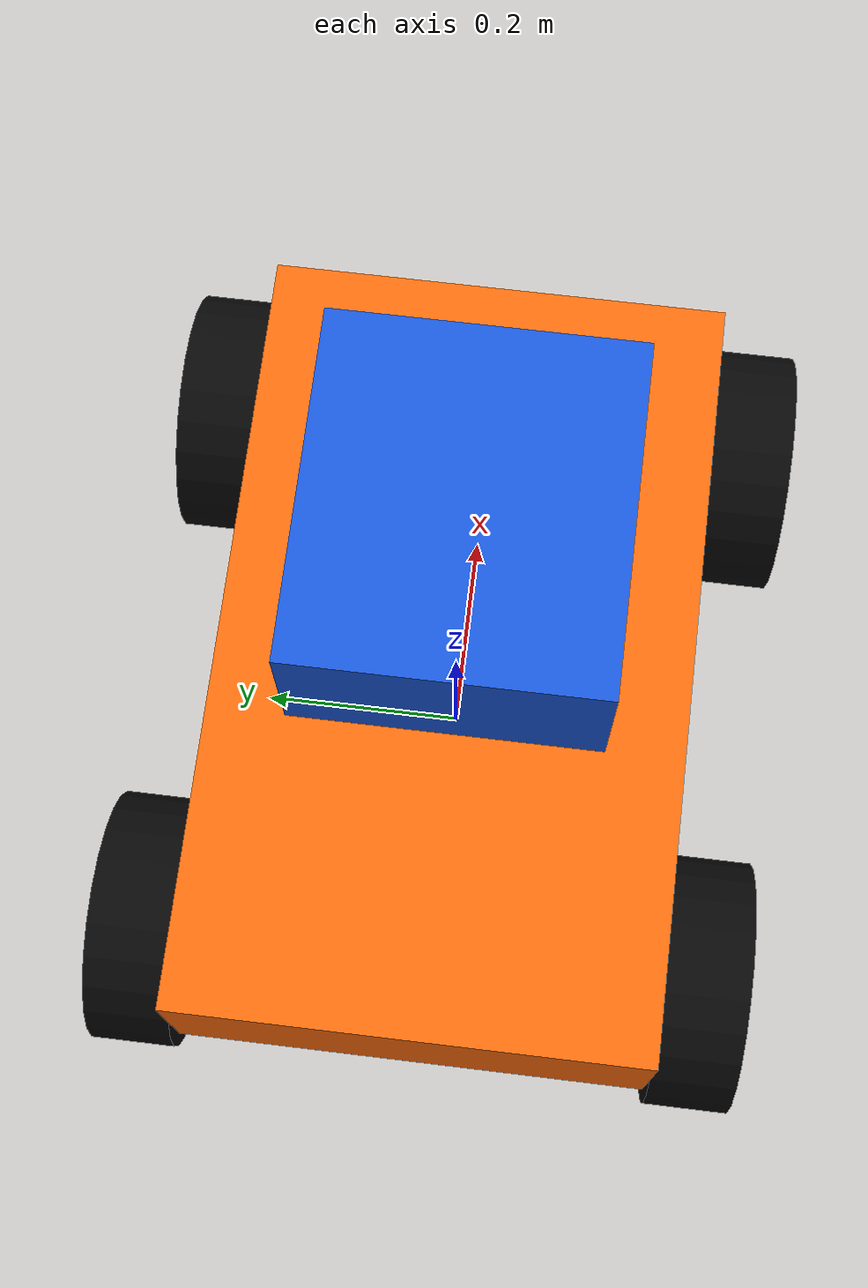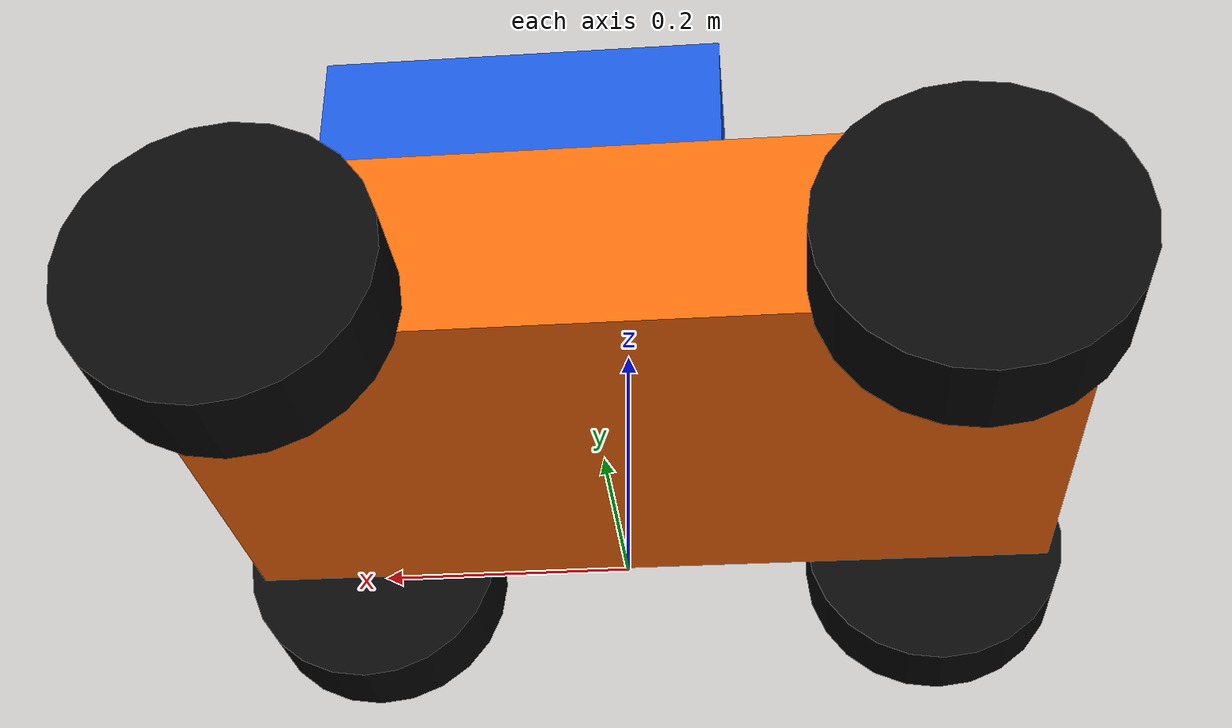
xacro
<?xml version="1.0"?>
<robot name="mountain_car" xmlns:xacro="http://www.ros.org/wiki/xacro">
  <!--
    四轮山地小车模型：
    - base_footprint 作为地面投影坐标系；
    - base_link 作为车体主 link；
    - Gazebo 平面运动插件订阅 /cmd_vel，便于 WASD 和自动巡航控制。
  -->

  <xacro:property name="chassis_length" value="0.75" />
  <xacro:property name="chassis_width" value="0.45" />
  <xacro:property name="chassis_height" value="0.16" />
  <xacro:property name="chassis_z" value="0.18" />
  <xacro:property name="wheel_radius" value="0.12" />
  <xacro:property name="wheel_width" value="0.08" />
  <xacro:property name="wheel_x" value="0.27" />
  <xacro:property name="wheel_y" value="0.265" />
  <xacro:property name="wheel_z" value="0.12" />

  <!-- ========== 材质定义：颜色在 RViz 和 Gazebo 中都易于识别 ========== -->
  <material name="orange_body">
    <color rgba="1.0 0.42 0.05 1.0" />
  </material>
  <material name="dark_wheel">
    <color rgba="0.03 0.03 0.03 1.0" />
  </material>
  <material name="silver">
    <color rgba="0.75 0.75 0.72 1.0" />
  </material>
  <material name="blue_window">
    <color rgba="0.10 0.34 0.85 1.0" />
  </material>

  <!-- KDL 不建议根 link 带惯量，因此保留一个无惯量的 base_footprint。 -->
  <link name="base_footprint" />

  <joint name="base_footprint_joint" type="fixed">
    <parent link="base_footprint" />
    <child link="base_link" />
    <origin xyz="0 0 0" rpy="0 0 0" />
  </joint>

  <!-- ========== 小车底盘 base_link ========== -->
  <link name="base_link">
    <visual>
      <origin xyz="0 0 ${chassis_z}" rpy="0 0 0" />
      <geometry>
        <box size="${chassis_length} ${chassis_width} ${chassis_height}" />
      </geometry>
      <material name="orange_body" />
    </visual>
    <collision>
      <origin xyz="0 0 ${chassis_z}" rpy="0 0 0" />
      <geometry>
        <box size="${chassis_length} ${chassis_width} ${chassis_height}" />
      </geometry>
    </collision>
    <inertial>
      <origin xyz="0 0 ${chassis_z}" rpy="0 0 0" />
      <mass value="7.0" />
      <inertia ixx="0.1330" ixy="0.0" ixz="0.0"
               iyy="0.3431" iyz="0.0"
               izz="0.4463" />
    </inertial>
  </link>

  <!-- 车顶小块用于区分前后方向，截图时能看清小车朝向。 -->
  <link name="top_cabin">
    <visual>
      <origin xyz="0.05 0 0" rpy="0 0 0" />
      <geometry>
        <box size="0.34 0.30 0.16" />
      </geometry>
      <material name="blue_window" />
    </visual>
    <collision>
      <origin xyz="0.05 0 0" rpy="0 0 0" />
      <geometry>
        <box size="0.34 0.30 0.16" />
      </geometry>
    </collision>
    <inertial>
      <origin xyz="0.05 0 0" rpy="0 0 0" />
      <mass value="1.2" />
      <inertia ixx="0.0116" ixy="0.0" ixz="0.0"
               iyy="0.0142" iyz="0.0"
               izz="0.0205" />
    </inertial>
  </link>

  <joint name="top_cabin_joint" type="fixed">
    <parent link="base_link" />
    <child link="top_cabin" />
    <origin xyz="0.03 0 0.34" rpy="0 0 0" />
  </joint>

  <xacro:macro name="wheel_link" params="name">
    <link name="${name}">
      <visual>
        <!-- URDF 圆柱默认沿 z 轴，旋转 90 度后使车轮轴线沿 y 轴。 -->
        <origin xyz="0 0 0" rpy="1.5708 0 0" />
        <geometry>
          <cylinder radius="${wheel_radius}" length="${wheel_width}" />
        </geometry>
        <material name="dark_wheel" />
      </visual>
      <collision>
        <origin xyz="0 0 0" rpy="1.5708 0 0" />
        <geometry>
          <cylinder radius="${wheel_radius}" length="${wheel_width}" />
        </geometry>
      </collision>
      <inertial>
        <origin xyz="0 0 0" rpy="0 0 0" />
        <mass value="0.7" />
        <inertia ixx="0.0029" ixy="0.0" ixz="0.0"
                 iyy="0.0050" iyz="0.0"
                 izz="0.0029" />
      </inertial>
    </link>
  </xacro:macro>

  <xacro:macro name="wheel_joint" params="name child x y">
    <joint name="${name}" type="continuous">
      <parent link="base_link" />
      <child link="${child}" />
      <origin xyz="${x} ${y} ${wheel_z}" rpy="0 0 0" />
      <axis xyz="0 1 0" />
      <dynamics damping="0.12" friction="0.02" />
    </joint>
  </xacro:macro>

  <!-- ========== 四个车轮 ========== -->
  <xacro:wheel_link name="front_left_wheel" />
  <xacro:wheel_link name="front_right_wheel" />
  <xacro:wheel_link name="rear_left_wheel" />
  <xacro:wheel_link name="rear_right_wheel" />

  <xacro:wheel_joint name="front_left_wheel_joint" child="front_left_wheel" x="${wheel_x}" y="${wheel_y}" />
  <xacro:wheel_joint name="front_right_wheel_joint" child="front_right_wheel" x="${wheel_x}" y="${-wheel_y}" />
  <xacro:wheel_joint name="rear_left_wheel_joint" child="rear_left_wheel" x="${-wheel_x}" y="${wheel_y}" />
  <xacro:wheel_joint name="rear_right_wheel_joint" child="rear_right_wheel" x="${-wheel_x}" y="${-wheel_y}" />

  <!-- ========== Gazebo 外观和接触参数 ========== -->
  <gazebo reference="base_link">
    <material>Gazebo/Orange</material>
  </gazebo>
  <gazebo reference="top_cabin">
    <material>Gazebo/Blue</material>
  </gazebo>

  <gazebo reference="front_left_wheel">
    <material>Gazebo/Black</material>
    <mu1>0.9</mu1>
    <mu2>0.9</mu2>
    <kp>100000.0</kp>
    <kd>1.0</kd>
  </gazebo>
  <gazebo reference="front_right_wheel">
    <material>Gazebo/Black</material>
    <mu1>0.9</mu1>
    <mu2>0.9</mu2>
    <kp>100000.0</kp>
    <kd>1.0</kd>
  </gazebo>
  <gazebo reference="rear_left_wheel">
    <material>Gazebo/Black</material>
    <mu1>1.5</mu1>
    <mu2>1.5</mu2>
    <kp>100000.0</kp>
    <kd>1.0</kd>
  </gazebo>
  <gazebo reference="rear_right_wheel">
    <material>Gazebo/Black</material>
    <mu1>1.5</mu1>
    <mu2>1.5</mu2>
    <kp>100000.0</kp>
    <kd>1.0</kd>
  </gazebo>

  <!--
    Gazebo 平面运动插件：
    订阅 /cmd_vel 并直接驱动车体移动，保留四轮小车外观。
    该插件在 ROS Noetic + Gazebo11 的课程实验环境中更稳定，适合演示和截图。
  -->
  <gazebo>
    <plugin name="mountain_car_planar_move" filename="libgazebo_ros_planar_move.so">
      <robotNamespace>/</robotNamespace>
      <commandTopic>cmd_vel</commandTopic>
      <odometryTopic>odom</odometryTopic>
      <odometryFrame>odom</odometryFrame>
      <robotBaseFrame>base_footprint</robotBaseFrame>
      <odometryRate>50.0</odometryRate>
      <publishTF>true</publishTF>
    </plugin>
  </gazebo>
</robot>
